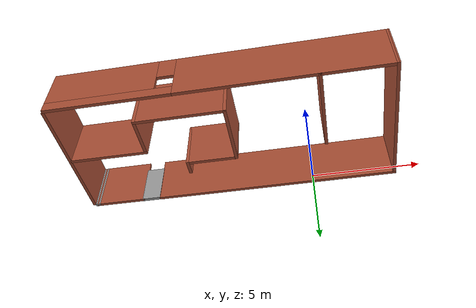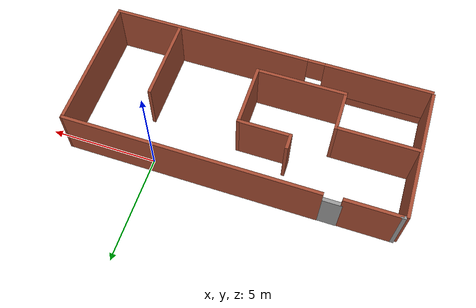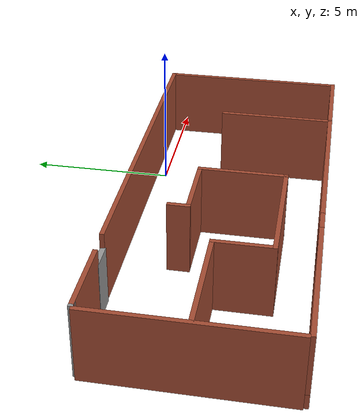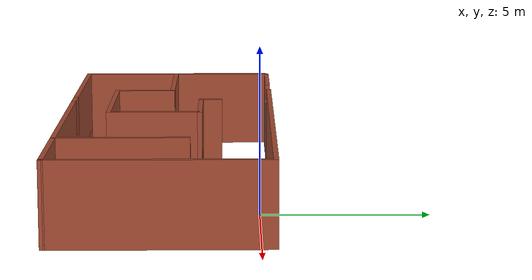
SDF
<?xml version='1.0'?>
<sdf version='1.6'>
  <model name='simplebuilding'>
    <pose frame=''>-3.65938 -2.78108 0 0 -0 0</pose>
    <link name='Door_0'>
      <collision name='Door_0_Collision'>
        <geometry>
          <box>
            <size>0.9 0.17 2</size>
          </box>
        </geometry>
        <pose frame=''>0 0 1 0 -0 0</pose>
      </collision>
      <visual name='Door_0_Visual'>
        <pose frame=''>0 0 1 0 -0 0</pose>
        <geometry>
          <box>
            <size>0.9 0.17 2</size>
          </box>
        </geometry>
        <material>
          <script>
            <uri>file://media/materials/scripts/gazebo.material</uri>
            <name>Gazebo/Grey</name>
          </script>
        </material>
      </visual>
      <pose frame=''>-4.5614 3.16525 0 0 -0 0</pose>
    </link>
    <link name='Wall_13'>
      <collision name='Wall_13_Collision'>
        <geometry>
          <box>
            <size>0.25 0.15 2.5</size>
          </box>
        </geometry>
        <pose frame=''>0 0 1.25 0 -0 0</pose>
      </collision>
      <visual name='Wall_13_Visual'>
        <pose frame=''>0 0 1.25 0 -0 0</pose>
        <geometry>
          <box>
            <size>0.25 0.15 2.5</size>
          </box>
        </geometry>
        <material>
          <script>
            <uri>file://media/materials/scripts/gazebo.material</uri>
            <name>Gazebo/Grey</name>
          </script>
          <ambient>1 1 1 1</ambient>
        </material>
        <meta>
          <layer>0</layer>
        </meta>
      </visual>
      <pose frame=''>-7.40376 3.16516 0 0 0 -0.001698</pose>
    </link>
    <link name='Wall_17'>
      <collision name='Wall_17_Collision'>
        <geometry>
          <box>
            <size>6.25 0.15 2.5</size>
          </box>
        </geometry>
        <pose frame=''>0 0 1.25 0 -0 0</pose>
      </collision>
      <visual name='Wall_17_Visual'>
        <pose frame=''>0 0 1.25 0 -0 0</pose>
        <geometry>
          <box>
            <size>6.25 0.15 2.5</size>
          </box>
        </geometry>
        <material>
          <script>
            <uri>file://media/materials/scripts/gazebo.material</uri>
            <name>Gazebo/Bricks</name>
          </script>
          <ambient>1 1 1 1</ambient>
        </material>
        <meta>
          <layer>0</layer>
        </meta>
      </visual>
      <pose frame=''>-7.57862 0.026077 0 0 -0 1.5708</pose>
    </link>
    <link name='Wall_19'>
      <collision name='Wall_19_Collision'>
        <geometry>
          <box>
            <size>3.75 0.15 2.5</size>
          </box>
        </geometry>
        <pose frame=''>0 0 1.25 0 -0 0</pose>
      </collision>
      <visual name='Wall_19_Visual'>
        <pose frame=''>0 0 1.25 0 -0 0</pose>
        <geometry>
          <box>
            <size>3.75 0.15 2.5</size>
          </box>
        </geometry>
        <material>
          <script>
            <uri>file://media/materials/scripts/gazebo.material</uri>
            <name>Gazebo/Bricks</name>
          </script>
          <ambient>1 1 1 1</ambient>
        </material>
        <meta>
          <layer>0</layer>
        </meta>
      </visual>
      <pose frame=''>-5.67762 -0.052923 0 0 -0 3.14159</pose>
    </link>
    <link name='Wall_2'>
      <collision name='Wall_2_Collision'>
        <geometry>
          <box>
            <size>11.747 0.15 2.5</size>
          </box>
        </geometry>
        <pose frame=''>0 0 1.25 0 -0 0</pose>
      </collision>
      <visual name='Wall_2_Visual'>
        <pose frame=''>0 0 1.25 0 -0 0</pose>
        <geometry>
          <box>
            <size>11.747 0.15 2.5</size>
          </box>
        </geometry>
        <material>
          <script>
            <uri>file://media/materials/scripts/gazebo.material</uri>
            <name>Gazebo/Bricks</name>
          </script>
          <ambient>0.760784 0.662745 0.627451 1</ambient>
        </material>
        <meta>
          <layer>0</layer>
        </meta>
      </visual>
      <pose frame=''>1.73328 3.17508 0 0 0 -0.001725</pose>
    </link>
    <link name='Wall_21'>
      <collision name='Wall_21_Collision'>
        <geometry>
          <box>
            <size>2 0.15 2.5</size>
          </box>
        </geometry>
        <pose frame=''>0 0 1.25 0 -0 0</pose>
      </collision>
      <visual name='Wall_21_Visual'>
        <pose frame=''>0 0 1.25 0 -0 0</pose>
        <geometry>
          <box>
            <size>2 0.15 2.5</size>
          </box>
        </geometry>
        <material>
          <script>
            <uri>file://media/materials/scripts/gazebo.material</uri>
            <name>Gazebo/Bricks</name>
          </script>
          <ambient>1 1 1 1</ambient>
        </material>
        <meta>
          <layer>0</layer>
        </meta>
      </visual>
      <pose frame=''>-3.87762 -0.977923 0 0 0 -1.5708</pose>
    </link>
    <link name='Wall_22'>
      <collision name='Wall_22_Collision'>
        <geometry>
          <box>
            <size>4.25 0.15 2.5</size>
          </box>
        </geometry>
        <pose frame=''>0 0 1.25 0 -0 0</pose>
      </collision>
      <visual name='Wall_22_Visual'>
        <pose frame=''>0 0 1.25 0 -0 0</pose>
        <geometry>
          <box>
            <size>4.25 0.15 2.5</size>
          </box>
        </geometry>
        <material>
          <script>
            <uri>file://media/materials/scripts/gazebo.material</uri>
            <name>Gazebo/Bricks</name>
          </script>
          <ambient>1 1 1 1</ambient>
        </material>
        <meta>
          <layer>0</layer>
        </meta>
      </visual>
      <pose frame=''>-1.82762 -1.90292 0 0 -0 0</pose>
    </link>
    <link name='Wall_23'>
      <collision name='Wall_23_Collision'>
        <geometry>
          <box>
            <size>3 0.15 2.5</size>
          </box>
        </geometry>
        <pose frame=''>0 0 1.25 0 -0 0</pose>
      </collision>
      <visual name='Wall_23_Visual'>
        <pose frame=''>0 0 1.25 0 -0 0</pose>
        <geometry>
          <box>
            <size>3 0.15 2.5</size>
          </box>
        </geometry>
        <material>
          <script>
            <uri>file://media/materials/scripts/gazebo.material</uri>
            <name>Gazebo/Bricks</name>
          </script>
          <ambient>1 1 1 1</ambient>
        </material>
        <meta>
          <layer>0</layer>
        </meta>
      </visual>
      <pose frame=''>0.222382 -0.477923 0 0 -0 1.5708</pose>
    </link>
    <link name='Wall_24'>
      <collision name='Wall_24_Collision'>
        <geometry>
          <box>
            <size>2.5 0.15 2.5</size>
          </box>
        </geometry>
        <pose frame=''>0 0 1.25 0 -0 0</pose>
      </collision>
      <visual name='Wall_24_Visual'>
        <pose frame=''>0 0 1.25 0 -0 0</pose>
        <geometry>
          <box>
            <size>2.5 0.15 2.5</size>
          </box>
        </geometry>
        <material>
          <script>
            <uri>file://media/materials/scripts/gazebo.material</uri>
            <name>Gazebo/Bricks</name>
          </script>
          <ambient>1 1 1 1</ambient>
        </material>
        <meta>
          <layer>0</layer>
        </meta>
      </visual>
      <pose frame=''>-0.952618 0.947077 0 0 -0 3.14159</pose>
    </link>
    <link name='Wall_25'>
      <collision name='Wall_25_Collision'>
        <geometry>
          <box>
            <size>0.75 0.15 2.5</size>
          </box>
        </geometry>
        <pose frame=''>0 0 1.25 0 -0 0</pose>
      </collision>
      <visual name='Wall_25_Visual'>
        <pose frame=''>0 0 1.25 0 -0 0</pose>
        <geometry>
          <box>
            <size>0.75 0.15 2.5</size>
          </box>
        </geometry>
        <material>
          <script>
            <uri>file://media/materials/scripts/gazebo.material</uri>
            <name>Gazebo/Bricks</name>
          </script>
          <ambient>1 1 1 1</ambient>
        </material>
        <meta>
          <layer>0</layer>
        </meta>
      </visual>
      <pose frame=''>-2.12762 1.24708 0 0 -0 1.5708</pose>
    </link>
    <link name='Wall_27'>
      <collision name='Wall_27_Collision'>
        <geometry>
          <box>
            <size>4 0.15 2.5</size>
          </box>
        </geometry>
        <pose frame=''>0 0 1.25 0 -0 0</pose>
      </collision>
      <visual name='Wall_27_Visual'>
        <pose frame=''>0 0 1.25 0 -0 0</pose>
        <geometry>
          <box>
            <size>4 0.15 2.5</size>
          </box>
        </geometry>
        <material>
          <script>
            <uri>file://media/materials/scripts/gazebo.material</uri>
            <name>Gazebo/Bricks</name>
          </script>
          <ambient>1 1 1 1</ambient>
        </material>
        <meta>
          <layer>0</layer>
        </meta>
      </visual>
      <pose frame=''>4.44938 -1.23392 0 0 0 -1.5708</pose>
    </link>
    <link name='Wall_3'>
      <collision name='Wall_3_Collision'>
        <geometry>
          <box>
            <size>6.50013 0.15 2.5</size>
          </box>
        </geometry>
        <pose frame=''>0 0 1.25 0 -0 0</pose>
      </collision>
      <visual name='Wall_3_Visual'>
        <pose frame=''>0 0 1.25 0 -0 0</pose>
        <geometry>
          <box>
            <size>6.50013 0.15 2.5</size>
          </box>
        </geometry>
        <material>
          <script>
            <uri>file://media/materials/scripts/gazebo.material</uri>
            <name>Gazebo/Bricks</name>
          </script>
          <ambient>1 1 1 1</ambient>
        </material>
        <meta>
          <layer>0</layer>
        </meta>
      </visual>
      <pose frame=''>7.56838 -0.009923 0 0 0 -1.56765</pose>
    </link>
    <link name='Wall_4'>
      <pose frame=''>0.029882 -3.17492 0 0 -0 3.14027</pose>
      <visual name='Wall_4_Visual_0'>
        <pose frame=''>-2.89481 0 1.25 0 -0 0</pose>
        <geometry>
          <box>
            <size>9.4571 0.15 2.5</size>
          </box>
        </geometry>
        <material>
          <script>
            <uri>file://media/materials/scripts/gazebo.material</uri>
            <name>Gazebo/Bricks</name>
          </script>
          <ambient>1 1 1 1</ambient>
        </material>
        <meta>
          <layer>0</layer>
        </meta>
      </visual>
      <collision name='Wall_4_Collision_0'>
        <geometry>
          <box>
            <size>9.4571 0.15 2.5</size>
          </box>
        </geometry>
        <pose frame=''>-2.89481 0 1.25 0 -0 0</pose>
      </collision>
      <visual name='Wall_4_Visual_1'>
        <pose frame=''>4.72855 0 0.25 0 -0 0</pose>
        <geometry>
          <box>
            <size>5.78962 0.15 0.5</size>
          </box>
        </geometry>
        <material>
          <script>
            <uri>file://media/materials/scripts/gazebo.material</uri>
            <name>Gazebo/Bricks</name>
          </script>
          <ambient>1 1 1 1</ambient>
        </material>
        <meta>
          <layer>0</layer>
        </meta>
      </visual>
      <collision name='Wall_4_Collision_1'>
        <geometry>
          <box>
            <size>5.78962 0.15 0.5</size>
          </box>
        </geometry>
        <pose frame=''>4.72855 0 0.25 0 -0 0</pose>
      </collision>
      <visual name='Wall_4_Visual_2'>
        <pose frame=''>5.12855 0 1.5 0 -0 0</pose>
        <geometry>
          <box>
            <size>4.98962 0.15 2</size>
          </box>
        </geometry>
        <material>
          <script>
            <uri>file://media/materials/scripts/gazebo.material</uri>
            <name>Gazebo/Bricks</name>
          </script>
          <ambient>1 1 1 1</ambient>
        </material>
        <meta>
          <layer>0</layer>
        </meta>
      </visual>
      <collision name='Wall_4_Collision_2'>
        <geometry>
          <box>
            <size>4.98962 0.15 2</size>
          </box>
        </geometry>
        <pose frame=''>5.12855 0 1.5 0 -0 0</pose>
      </collision>
      <visual name='Wall_4_Visual_3'>
        <pose frame=''>2.23374 0 1.9 0 -0 0</pose>
        <geometry>
          <box>
            <size>0.8 0.15 1.2</size>
          </box>
        </geometry>
        <material>
          <script>
            <uri>file://media/materials/scripts/gazebo.material</uri>
            <name>Gazebo/Bricks</name>
          </script>
          <ambient>1 1 1 1</ambient>
        </material>
        <meta>
          <layer>0</layer>
        </meta>
      </visual>
      <collision name='Wall_4_Collision_3'>
        <geometry>
          <box>
            <size>0.8 0.15 1.2</size>
          </box>
        </geometry>
        <pose frame=''>2.23374 0 1.9 0 -0 0</pose>
      </collision>
    </link>
    <link name='Wall_9'>
      <collision name='Wall_9_Collision'>
        <geometry>
          <box>
            <size>2.5 0.15 2.5</size>
          </box>
        </geometry>
        <pose frame=''>0 0 1.25 0 -0 0</pose>
      </collision>
      <visual name='Wall_9_Visual'>
        <pose frame=''>0 0 1.25 0 -0 0</pose>
        <geometry>
          <box>
            <size>2.5 0.15 2.5</size>
          </box>
        </geometry>
        <material>
          <script>
            <uri>file://media/materials/scripts/gazebo.material</uri>
            <name>Gazebo/Bricks</name>
          </script>
          <ambient>1 1 1 1</ambient>
        </material>
        <meta>
          <layer>0</layer>
        </meta>
      </visual>
      <pose frame=''>-6.17862 3.16508 0 0 -0 3.14159</pose>
    </link>
    <static>1</static>
  </model>
</sdf>
